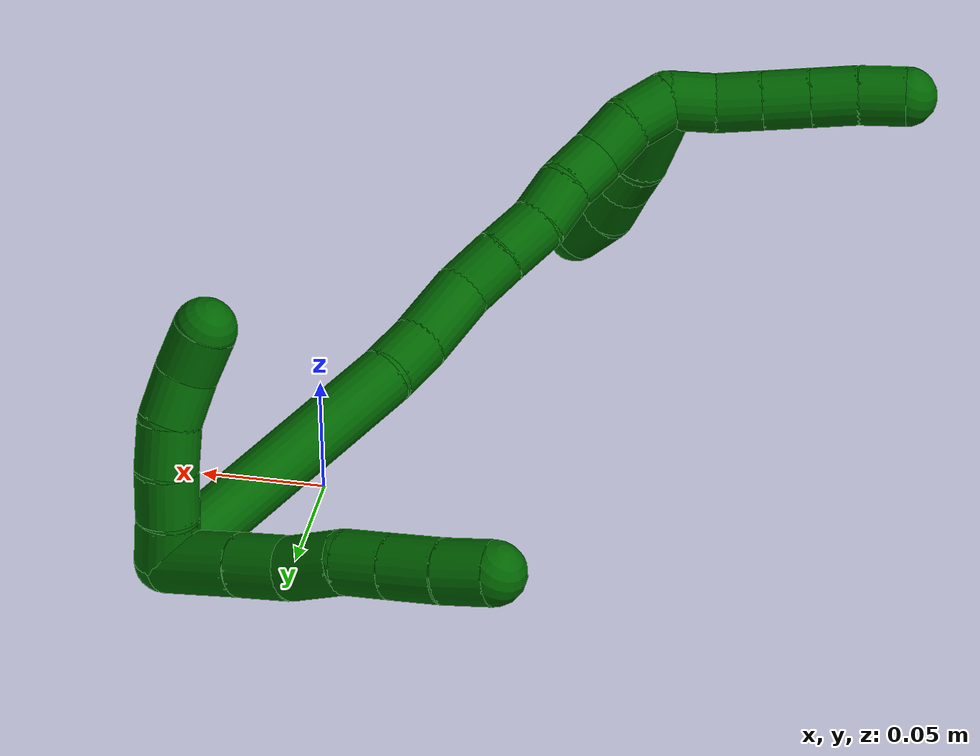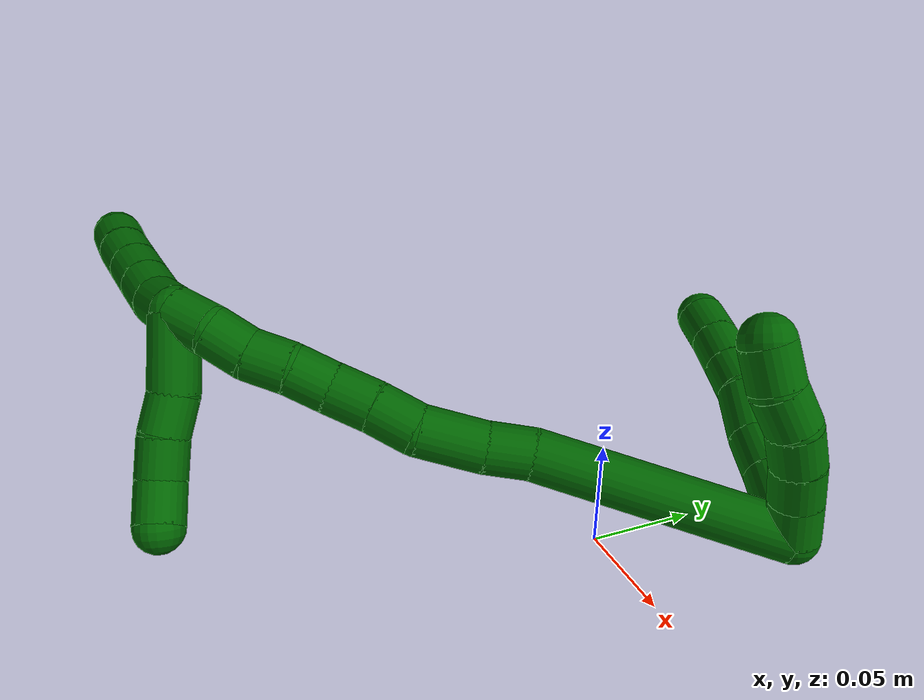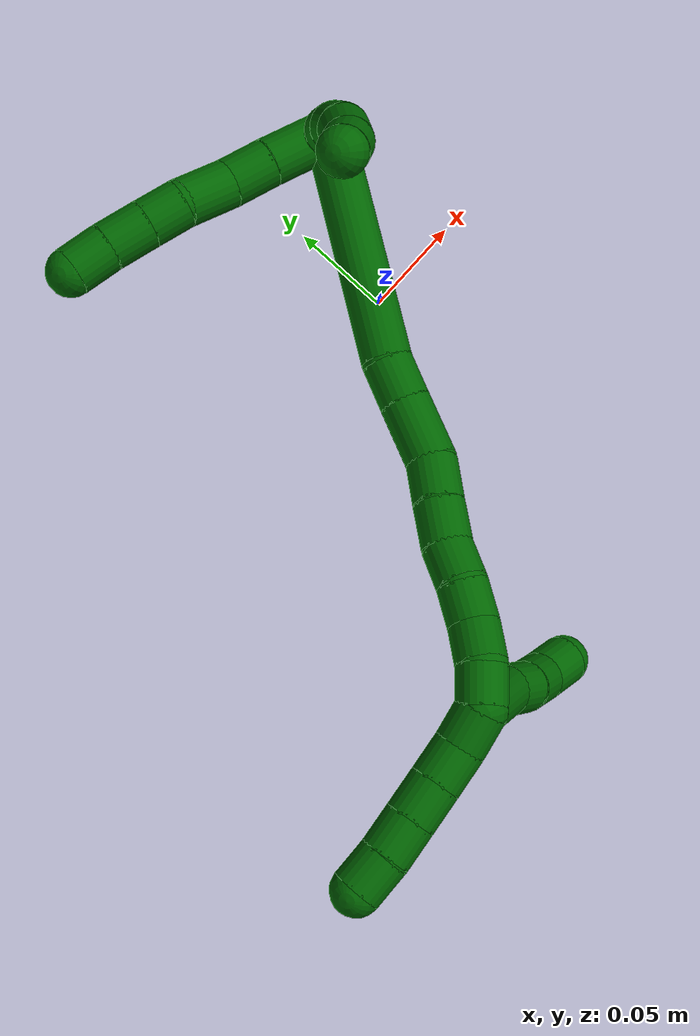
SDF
<sdf version="1.7">
 <world name="default">
  <model name="6">
   <static>0</static>
   <link name="6">
    <collision name="collision-cylinder-e_1_2_8">
     <pose>-0.009278 0.009504 0.012352 -0.65582 -0.536987 0.186655</pose>
     <geometry><cylinder><radius>0.0125</radius><length>0.036275</length></cylinder></geometry>
     <surface>
      <friction><ode><mu>1.16</mu><mu2>1.16</mu2><slip1>0</slip1><slip2>0</slip2></ode></friction>
      <contact><ode><kp>1e+06</kp><kd>1</kd><max_vel>0</max_vel><min_depth>0.001</min_depth></ode></contact>
     </surface>
    </collision>
    <visual name="visual-cylinder-e_1_2_8">
     <pose>-0.009278 0.009504 0.012352 -0.65582 -0.536987 0.186655</pose>
     <geometry><cylinder><radius>0.0125</radius><length>0.036275</length></cylinder></geometry>
     <material><ambient>0 0.392157 0.003922 1</ambient></material>
    </visual>
    <collision name="collision-cylinder-e_2_8_9">
     <pose>-0.024972 0.025046 0.032338 -0.669204 -0.582666 0.207761</pose>
     <geometry><cylinder><radius>0.0125</radius><length>0.023317</length></cylinder></geometry>
     <surface>
      <friction><ode><mu>1.16</mu><mu2>1.16</mu2><slip1>0</slip1><slip2>0</slip2></ode></friction>
      <contact><ode><kp>1e+06</kp><kd>1</kd><max_vel>0</max_vel><min_depth>0.001</min_depth></ode></contact>
     </surface>
    </collision>
    <visual name="visual-cylinder-e_2_8_9">
     <pose>-0.024972 0.025046 0.032338 -0.669204 -0.582666 0.207761</pose>
     <geometry><cylinder><radius>0.0125</radius><length>0.023317</length></cylinder></geometry>
     <material><ambient>0 0.392157 0.003922 1</ambient></material>
    </visual>
    <collision name="collision-cylinder-e_3_9_10">
     <pose>-0.037039 0.03719 0.050704 -0.517262 -0.429337 0.115234</pose>
     <geometry><cylinder><radius>0.0125</radius><length>0.027156</length></cylinder></geometry>
     <surface>
      <friction><ode><mu>1.16</mu><mu2>1.16</mu2><slip1>0</slip1><slip2>0</slip2></ode></friction>
      <contact><ode><kp>1e+06</kp><kd>1</kd><max_vel>0</max_vel><min_depth>0.001</min_depth></ode></contact>
     </surface>
    </collision>
    <visual name="visual-cylinder-e_3_9_10">
     <pose>-0.037039 0.03719 0.050704 -0.517262 -0.429337 0.115234</pose>
     <geometry><cylinder><radius>0.0125</radius><length>0.027156</length></cylinder></geometry>
     <material><ambient>0 0.392157 0.003922 1</ambient></material>
    </visual>
    <collision name="collision-cylinder-e_4_10_11">
     <pose>-0.048722 0.048541 0.067719 -0.695603 -0.63502 0.237163</pose>
     <geometry><cylinder><radius>0.0125</radius><length>0.020336</length></cylinder></geometry>
     <surface>
      <friction><ode><mu>1.16</mu><mu2>1.16</mu2><slip1>0</slip1><slip2>0</slip2></ode></friction>
      <contact><ode><kp>1e+06</kp><kd>1</kd><max_vel>0</max_vel><min_depth>0.001</min_depth></ode></contact>
     </surface>
    </collision>
    <visual name="visual-cylinder-e_4_10_11">
     <pose>-0.048722 0.048541 0.067719 -0.695603 -0.63502 0.237163</pose>
     <geometry><cylinder><radius>0.0125</radius><length>0.020336</length></cylinder></geometry>
     <material><ambient>0 0.392157 0.003922 1</ambient></material>
    </visual>
    <collision name="collision-cylinder-e_5_11_12">
     <pose>-0.061409 0.059415 0.08085 -0.687914 -0.644044 0.237885</pose>
     <geometry><cylinder><radius>0.0125</radius><length>0.022167</length></cylinder></geometry>
     <surface>
      <friction><ode><mu>1.16</mu><mu2>1.16</mu2><slip1>0</slip1><slip2>0</slip2></ode></friction>
      <contact><ode><kp>1e+06</kp><kd>1</kd><max_vel>0</max_vel><min_depth>0.001</min_depth></ode></contact>
     </surface>
    </collision>
    <visual name="visual-cylinder-e_5_11_12">
     <pose>-0.061409 0.059415 0.08085 -0.687914 -0.644044 0.237885</pose>
     <geometry><cylinder><radius>0.0125</radius><length>0.022167</length></cylinder></geometry>
     <material><ambient>0 0.392157 0.003922 1</ambient></material>
    </visual>
    <collision name="collision-cylinder-e_6_12_6">
     <pose>-0.074695 0.069719 0.094162 -0.626278 -0.693396 0.232908</pose>
     <geometry><cylinder><radius>0.0125</radius><length>0.020749</length></cylinder></geometry>
     <surface>
      <friction><ode><mu>1.16</mu><mu2>1.16</mu2><slip1>0</slip1><slip2>0</slip2></ode></friction>
      <contact><ode><kp>1e+06</kp><kd>1</kd><max_vel>0</max_vel><min_depth>0.001</min_depth></ode></contact>
     </surface>
    </collision>
    <visual name="visual-cylinder-e_6_12_6">
     <pose>-0.074695 0.069719 0.094162 -0.626278 -0.693396 0.232908</pose>
     <geometry><cylinder><radius>0.0125</radius><length>0.020749</length></cylinder></geometry>
     <material><ambient>0 0.392157 0.003922 1</ambient></material>
    </visual>
    <collision name="collision-cylinder-e_1_2_13">
     <pose>0.00247 -0.003127 0.009172 0.328616 0.249571 0.04159</pose>
     <geometry><cylinder><radius>0.0125</radius><length>0.02</length></cylinder></geometry>
     <surface>
      <friction><ode><mu>1.16</mu><mu2>1.16</mu2><slip1>0</slip1><slip2>0</slip2></ode></friction>
      <contact><ode><kp>1e+06</kp><kd>1</kd><max_vel>0</max_vel><min_depth>0.001</min_depth></ode></contact>
     </surface>
    </collision>
    <visual name="visual-cylinder-e_1_2_13">
     <pose>0.00247 -0.003127 0.009172 0.328616 0.249571 0.04159</pose>
     <geometry><cylinder><radius>0.0125</radius><length>0.02</length></cylinder></geometry>
     <material><ambient>0 0.392157 0.003922 1</ambient></material>
    </visual>
    <collision name="collision-cylinder-e_2_13_14">
     <pose>0.007614 -0.010572 0.026958 0.464604 0.270752 0.064424</pose>
     <geometry><cylinder><radius>0.0125</radius><length>0.02</length></cylinder></geometry>
     <surface>
      <friction><ode><mu>1.16</mu><mu2>1.16</mu2><slip1>0</slip1><slip2>0</slip2></ode></friction>
      <contact><ode><kp>1e+06</kp><kd>1</kd><max_vel>0</max_vel><min_depth>0.001</min_depth></ode></contact>
     </surface>
    </collision>
    <visual name="visual-cylinder-e_2_13_14">
     <pose>0.007614 -0.010572 0.026958 0.464604 0.270752 0.064424</pose>
     <geometry><cylinder><radius>0.0125</radius><length>0.02</length></cylinder></geometry>
     <material><ambient>0 0.392157 0.003922 1</ambient></material>
    </visual>
    <collision name="collision-cylinder-e_3_14_15">
     <pose>0.011861 -0.019949 0.044053 0.537866 0.157825 0.043582</pose>
     <geometry><cylinder><radius>0.0125</radius><length>0.02</length></cylinder></geometry>
     <surface>
      <friction><ode><mu>1.16</mu><mu2>1.16</mu2><slip1>0</slip1><slip2>0</slip2></ode></friction>
      <contact><ode><kp>1e+06</kp><kd>1</kd><max_vel>0</max_vel><min_depth>0.001</min_depth></ode></contact>
     </surface>
    </collision>
    <visual name="visual-cylinder-e_3_14_15">
     <pose>0.011861 -0.019949 0.044053 0.537866 0.157825 0.043582</pose>
     <geometry><cylinder><radius>0.0125</radius><length>0.02</length></cylinder></geometry>
     <material><ambient>0 0.392157 0.003922 1</ambient></material>
    </visual>
    <collision name="collision-cylinder-e_4_15_16">
     <pose>0.01232 -0.02998 0.061139 0.523955 -0.111441 -0.029911</pose>
     <geometry><cylinder><radius>0.0125</radius><length>0.02</length></cylinder></geometry>
     <surface>
      <friction><ode><mu>1.16</mu><mu2>1.16</mu2><slip1>0</slip1><slip2>0</slip2></ode></friction>
      <contact><ode><kp>1e+06</kp><kd>1</kd><max_vel>0</max_vel><min_depth>0.001</min_depth></ode></contact>
     </surface>
    </collision>
    <visual name="visual-cylinder-e_4_15_16">
     <pose>0.01232 -0.02998 0.061139 0.523955 -0.111441 -0.029911</pose>
     <geometry><cylinder><radius>0.0125</radius><length>0.02</length></cylinder></geometry>
     <material><ambient>0 0.392157 0.003922 1</ambient></material>
    </visual>
    <collision name="collision-cylinder-e_5_16_5">
     <pose>0.010565 -0.037528 0.079385 0.260993 -0.06436 -0.00845</pose>
     <geometry><cylinder><radius>0.0125</radius><length>0.02</length></cylinder></geometry>
     <surface>
      <friction><ode><mu>1.16</mu><mu2>1.16</mu2><slip1>0</slip1><slip2>0</slip2></ode></friction>
      <contact><ode><kp>1e+06</kp><kd>1</kd><max_vel>0</max_vel><min_depth>0.001</min_depth></ode></contact>
     </surface>
    </collision>
    <visual name="visual-cylinder-e_5_16_5">
     <pose>0.010565 -0.037528 0.079385 0.260993 -0.06436 -0.00845</pose>
     <geometry><cylinder><radius>0.0125</radius><length>0.02</length></cylinder></geometry>
     <material><ambient>0 0.392157 0.003922 1</ambient></material>
    </visual>
    <collision name="collision-cylinder-e_1_2_17">
     <pose>-0.044639 -0.035479 0.021128 1.03368 -0.824311 -0.487115</pose>
     <geometry><cylinder><radius>0.0125</radius><length>0.12162</length></cylinder></geometry>
     <surface>
      <friction><ode><mu>1.16</mu><mu2>1.16</mu2><slip1>0</slip1><slip2>0</slip2></ode></friction>
      <contact><ode><kp>1e+06</kp><kd>1</kd><max_vel>0</max_vel><min_depth>0.001</min_depth></ode></contact>
     </surface>
    </collision>
    <visual name="visual-cylinder-e_1_2_17">
     <pose>-0.044639 -0.035479 0.021128 1.03368 -0.824311 -0.487115</pose>
     <geometry><cylinder><radius>0.0125</radius><length>0.12162</length></cylinder></geometry>
     <material><ambient>0 0.392157 0.003922 1</ambient></material>
    </visual>
    <collision name="collision-cylinder-e_2_17_18">
     <pose>-0.096983 -0.078636 0.044459 1.29153 -0.767354 -0.590594</pose>
     <geometry><cylinder><radius>0.0125</radius><length>0.022195</length></cylinder></geometry>
     <surface>
      <friction><ode><mu>1.16</mu><mu2>1.16</mu2><slip1>0</slip1><slip2>0</slip2></ode></friction>
      <contact><ode><kp>1e+06</kp><kd>1</kd><max_vel>0</max_vel><min_depth>0.001</min_depth></ode></contact>
     </surface>
    </collision>
    <visual name="visual-cylinder-e_2_17_18">
     <pose>-0.096983 -0.078636 0.044459 1.29153 -0.767354 -0.590594</pose>
     <geometry><cylinder><radius>0.0125</radius><length>0.022195</length></cylinder></geometry>
     <material><ambient>0 0.392157 0.003922 1</ambient></material>
    </visual>
    <collision name="collision-cylinder-e_3_18_19">
     <pose>-0.114746 -0.097685 0.051638 1.15816 -0.680995 -0.455289</pose>
     <geometry><cylinder><radius>0.0125</radius><length>0.031953</length></cylinder></geometry>
     <surface>
      <friction><ode><mu>1.16</mu><mu2>1.16</mu2><slip1>0</slip1><slip2>0</slip2></ode></friction>
      <contact><ode><kp>1e+06</kp><kd>1</kd><max_vel>0</max_vel><min_depth>0.001</min_depth></ode></contact>
     </surface>
    </collision>
    <visual name="visual-cylinder-e_3_18_19">
     <pose>-0.114746 -0.097685 0.051638 1.15816 -0.680995 -0.455289</pose>
     <geometry><cylinder><radius>0.0125</radius><length>0.031953</length></cylinder></geometry>
     <material><ambient>0 0.392157 0.003922 1</ambient></material>
    </visual>
    <collision name="collision-cylinder-e_4_19_20">
     <pose>-0.132193 -0.114859 0.062216 0.803126 -0.741713 -0.327286</pose>
     <geometry><cylinder><radius>0.0125</radius><length>0.021874</length></cylinder></geometry>
     <surface>
      <friction><ode><mu>1.16</mu><mu2>1.16</mu2><slip1>0</slip1><slip2>0</slip2></ode></friction>
      <contact><ode><kp>1e+06</kp><kd>1</kd><max_vel>0</max_vel><min_depth>0.001</min_depth></ode></contact>
     </surface>
    </collision>
    <visual name="visual-cylinder-e_4_19_20">
     <pose>-0.132193 -0.114859 0.062216 0.803126 -0.741713 -0.327286</pose>
     <geometry><cylinder><radius>0.0125</radius><length>0.021874</length></cylinder></geometry>
     <material><ambient>0 0.392157 0.003922 1</ambient></material>
    </visual>
    <collision name="collision-cylinder-e_5_20_21">
     <pose>-0.147368 -0.126669 0.072721 0.88619 -0.787363 -0.389247</pose>
     <geometry><cylinder><radius>0.0125</radius><length>0.021981</length></cylinder></geometry>
     <surface>
      <friction><ode><mu>1.16</mu><mu2>1.16</mu2><slip1>0</slip1><slip2>0</slip2></ode></friction>
      <contact><ode><kp>1e+06</kp><kd>1</kd><max_vel>0</max_vel><min_depth>0.001</min_depth></ode></contact>
     </surface>
    </collision>
    <visual name="visual-cylinder-e_5_20_21">
     <pose>-0.147368 -0.126669 0.072721 0.88619 -0.787363 -0.389247</pose>
     <geometry><cylinder><radius>0.0125</radius><length>0.021981</length></cylinder></geometry>
     <material><ambient>0 0.392157 0.003922 1</ambient></material>
    </visual>
    <collision name="collision-cylinder-e_6_21_22">
     <pose>-0.160644 -0.139557 0.082519 0.952575 -0.576555 -0.303614</pose>
     <geometry><cylinder><radius>0.0125</radius><length>0.02014</length></cylinder></geometry>
     <surface>
      <friction><ode><mu>1.16</mu><mu2>1.16</mu2><slip1>0</slip1><slip2>0</slip2></ode></friction>
      <contact><ode><kp>1e+06</kp><kd>1</kd><max_vel>0</max_vel><min_depth>0.001</min_depth></ode></contact>
     </surface>
    </collision>
    <visual name="visual-cylinder-e_6_21_22">
     <pose>-0.160644 -0.139557 0.082519 0.952575 -0.576555 -0.303614</pose>
     <geometry><cylinder><radius>0.0125</radius><length>0.02014</length></cylinder></geometry>
     <material><ambient>0 0.392157 0.003922 1</ambient></material>
    </visual>
    <collision name="collision-cylinder-e_7_22_23">
     <pose>-0.173128 -0.15256 0.091165 1.02089 -0.772167 -0.447588</pose>
     <geometry><cylinder><radius>0.0125</radius><length>0.020051</length></cylinder></geometry>
     <surface>
      <friction><ode><mu>1.16</mu><mu2>1.16</mu2><slip1>0</slip1><slip2>0</slip2></ode></friction>
      <contact><ode><kp>1e+06</kp><kd>1</kd><max_vel>0</max_vel><min_depth>0.001</min_depth></ode></contact>
     </surface>
    </collision>
    <visual name="visual-cylinder-e_7_22_23">
     <pose>-0.173128 -0.15256 0.091165 1.02089 -0.772167 -0.447588</pose>
     <geometry><cylinder><radius>0.0125</radius><length>0.020051</length></cylinder></geometry>
     <material><ambient>0 0.392157 0.003922 1</ambient></material>
    </visual>
    <collision name="collision-cylinder-e_8_23_24">
     <pose>-0.186243 -0.164184 0.100694 0.761046 -0.654528 -0.269938</pose>
     <geometry><cylinder><radius>0.0125</radius><length>0.020105</length></cylinder></geometry>
     <surface>
      <friction><ode><mu>1.16</mu><mu2>1.16</mu2><slip1>0</slip1><slip2>0</slip2></ode></friction>
      <contact><ode><kp>1e+06</kp><kd>1</kd><max_vel>0</max_vel><min_depth>0.001</min_depth></ode></contact>
     </surface>
    </collision>
    <visual name="visual-cylinder-e_8_23_24">
     <pose>-0.186243 -0.164184 0.100694 0.761046 -0.654528 -0.269938</pose>
     <geometry><cylinder><radius>0.0125</radius><length>0.020105</length></cylinder></geometry>
     <material><ambient>0 0.392157 0.003922 1</ambient></material>
    </visual>
    <collision name="collision-cylinder-e_9_24_1">
     <pose>-0.200404 -0.173446 0.111158 0.676028 -0.928855 -0.348615</pose>
     <geometry><cylinder><radius>0.0125</radius><length>0.020081</length></cylinder></geometry>
     <surface>
      <friction><ode><mu>1.16</mu><mu2>1.16</mu2><slip1>0</slip1><slip2>0</slip2></ode></friction>
      <contact><ode><kp>1e+06</kp><kd>1</kd><max_vel>0</max_vel><min_depth>0.001</min_depth></ode></contact>
     </surface>
    </collision>
    <visual name="visual-cylinder-e_9_24_1">
     <pose>-0.200404 -0.173446 0.111158 0.676028 -0.928855 -0.348615</pose>
     <geometry><cylinder><radius>0.0125</radius><length>0.020081</length></cylinder></geometry>
     <material><ambient>0 0.392157 0.003922 1</ambient></material>
    </visual>
    <collision name="collision-cylinder-e_1_1_25">
     <pose>-0.210498 -0.177648 0.097156 3.11799 -0.109302 -2.71667</pose>
     <geometry><cylinder><radius>0.0125</radius><length>0.037618</length></cylinder></geometry>
     <surface>
      <friction><ode><mu>1.16</mu><mu2>1.16</mu2><slip1>0</slip1><slip2>0</slip2></ode></friction>
      <contact><ode><kp>1e+06</kp><kd>1</kd><max_vel>0</max_vel><min_depth>0.001</min_depth></ode></contact>
     </surface>
    </collision>
    <visual name="visual-cylinder-e_1_1_25">
     <pose>-0.210498 -0.177648 0.097156 3.11799 -0.109302 -2.71667</pose>
     <geometry><cylinder><radius>0.0125</radius><length>0.037618</length></cylinder></geometry>
     <material><ambient>0 0.392157 0.003922 1</ambient></material>
    </visual>
    <collision name="collision-cylinder-e_2_25_26">
     <pose>-0.213951 -0.180683 0.068859 2.87791 -0.139902 -0.972151</pose>
     <geometry><cylinder><radius>0.0125</radius><length>0.020095</length></cylinder></geometry>
     <surface>
      <friction><ode><mu>1.16</mu><mu2>1.16</mu2><slip1>0</slip1><slip2>0</slip2></ode></friction>
      <contact><ode><kp>1e+06</kp><kd>1</kd><max_vel>0</max_vel><min_depth>0.001</min_depth></ode></contact>
     </surface>
    </collision>
    <visual name="visual-cylinder-e_2_25_26">
     <pose>-0.213951 -0.180683 0.068859 2.87791 -0.139902 -0.972151</pose>
     <geometry><cylinder><radius>0.0125</radius><length>0.020095</length></cylinder></geometry>
     <material><ambient>0 0.392157 0.003922 1</ambient></material>
    </visual>
    <collision name="collision-cylinder-e_3_26_27">
     <pose>-0.216154 -0.184332 0.048919 3.0398 -0.077093 -1.29599</pose>
     <geometry><cylinder><radius>0.0125</radius><length>0.020838</length></cylinder></geometry>
     <surface>
      <friction><ode><mu>1.16</mu><mu2>1.16</mu2><slip1>0</slip1><slip2>0</slip2></ode></friction>
      <contact><ode><kp>1e+06</kp><kd>1</kd><max_vel>0</max_vel><min_depth>0.001</min_depth></ode></contact>
     </surface>
    </collision>
    <visual name="visual-cylinder-e_3_26_27">
     <pose>-0.216154 -0.184332 0.048919 3.0398 -0.077093 -1.29599</pose>
     <geometry><cylinder><radius>0.0125</radius><length>0.020838</length></cylinder></geometry>
     <material><ambient>0 0.392157 0.003922 1</ambient></material>
    </visual>
    <collision name="collision-cylinder-e_4_27_4">
     <pose>-0.214646 -0.188143 0.028481 2.87535 0.217179 1.36655</pose>
     <geometry><cylinder><radius>0.0125</radius><length>0.021448</length></cylinder></geometry>
     <surface>
      <friction><ode><mu>1.16</mu><mu2>1.16</mu2><slip1>0</slip1><slip2>0</slip2></ode></friction>
      <contact><ode><kp>1e+06</kp><kd>1</kd><max_vel>0</max_vel><min_depth>0.001</min_depth></ode></contact>
     </surface>
    </collision>
    <visual name="visual-cylinder-e_4_27_4">
     <pose>-0.214646 -0.188143 0.028481 2.87535 0.217179 1.36655</pose>
     <geometry><cylinder><radius>0.0125</radius><length>0.021448</length></cylinder></geometry>
     <material><ambient>0 0.392157 0.003922 1</ambient></material>
    </visual>
    <collision name="collision-cylinder-e_1_1_28">
     <pose>-0.217828 -0.175361 0.118775 -0.562631 -1.21744 0.397528</pose>
     <geometry><cylinder><radius>0.0125</radius><length>0.02</length></cylinder></geometry>
     <surface>
      <friction><ode><mu>1.16</mu><mu2>1.16</mu2><slip1>0</slip1><slip2>0</slip2></ode></friction>
      <contact><ode><kp>1e+06</kp><kd>1</kd><max_vel>0</max_vel><min_depth>0.001</min_depth></ode></contact>
     </surface>
    </collision>
    <visual name="visual-cylinder-e_1_1_28">
     <pose>-0.217828 -0.175361 0.118775 -0.562631 -1.21744 0.397528</pose>
     <geometry><cylinder><radius>0.0125</radius><length>0.02</length></cylinder></geometry>
     <material><ambient>0 0.392157 0.003922 1</ambient></material>
    </visual>
    <collision name="collision-cylinder-e_2_28_29">
     <pose>-0.235692 -0.171339 0.126532 -0.423319 -1.01242 0.237136</pose>
     <geometry><cylinder><radius>0.0125</radius><length>0.02</length></cylinder></geometry>
     <surface>
      <friction><ode><mu>1.16</mu><mu2>1.16</mu2><slip1>0</slip1><slip2>0</slip2></ode></friction>
      <contact><ode><kp>1e+06</kp><kd>1</kd><max_vel>0</max_vel><min_depth>0.001</min_depth></ode></contact>
     </surface>
    </collision>
    <visual name="visual-cylinder-e_2_28_29">
     <pose>-0.235692 -0.171339 0.126532 -0.423319 -1.01242 0.237136</pose>
     <geometry><cylinder><radius>0.0125</radius><length>0.02</length></cylinder></geometry>
     <material><ambient>0 0.392157 0.003922 1</ambient></material>
    </visual>
    <collision name="collision-cylinder-e_3_29_30">
     <pose>-0.25263 -0.166939 0.136213 -0.429783 -1.00795 0.23958</pose>
     <geometry><cylinder><radius>0.0125</radius><length>0.02</length></cylinder></geometry>
     <surface>
      <friction><ode><mu>1.16</mu><mu2>1.16</mu2><slip1>0</slip1><slip2>0</slip2></ode></friction>
      <contact><ode><kp>1e+06</kp><kd>1</kd><max_vel>0</max_vel><min_depth>0.001</min_depth></ode></contact>
     </surface>
    </collision>
    <visual name="visual-cylinder-e_3_29_30">
     <pose>-0.25263 -0.166939 0.136213 -0.429783 -1.00795 0.23958</pose>
     <geometry><cylinder><radius>0.0125</radius><length>0.02</length></cylinder></geometry>
     <material><ambient>0 0.392157 0.003922 1</ambient></material>
    </visual>
    <collision name="collision-cylinder-e_4_30_31">
     <pose>-0.269525 -0.162481 0.145943 -0.429524 -1.00429 0.238406</pose>
     <geometry><cylinder><radius>0.0125</radius><length>0.02</length></cylinder></geometry>
     <surface>
      <friction><ode><mu>1.16</mu><mu2>1.16</mu2><slip1>0</slip1><slip2>0</slip2></ode></friction>
      <contact><ode><kp>1e+06</kp><kd>1</kd><max_vel>0</max_vel><min_depth>0.001</min_depth></ode></contact>
     </surface>
    </collision>
    <visual name="visual-cylinder-e_4_30_31">
     <pose>-0.269525 -0.162481 0.145943 -0.429524 -1.00429 0.238406</pose>
     <geometry><cylinder><radius>0.0125</radius><length>0.02</length></cylinder></geometry>
     <material><ambient>0 0.392157 0.003922 1</ambient></material>
    </visual>
    <collision name="collision-cylinder-e_5_31_3">
     <pose>-0.286284 -0.1571 0.15539 -0.603248 -0.982903 0.330025</pose>
     <geometry><cylinder><radius>0.0125</radius><length>0.02</length></cylinder></geometry>
     <surface>
      <friction><ode><mu>1.16</mu><mu2>1.16</mu2><slip1>0</slip1><slip2>0</slip2></ode></friction>
      <contact><ode><kp>1e+06</kp><kd>1</kd><max_vel>0</max_vel><min_depth>0.001</min_depth></ode></contact>
     </surface>
    </collision>
    <visual name="visual-cylinder-e_5_31_3">
     <pose>-0.286284 -0.1571 0.15539 -0.603248 -0.982903 0.330025</pose>
     <geometry><cylinder><radius>0.0125</radius><length>0.02</length></cylinder></geometry>
     <material><ambient>0 0.392157 0.003922 1</ambient></material>
    </visual>
    <collision name="collision-sphere-3">
     <pose>-0.294605 -0.153953 0.159957 0 -0 0</pose>
     <geometry><sphere><radius>0.0125</radius></sphere></geometry>
     <surface>
      <friction><ode><mu>1.16</mu><mu2>1.16</mu2><slip1>0</slip1><slip2>0</slip2></ode></friction>
      <contact><ode><kp>1e+06</kp><kd>1</kd><max_vel>0</max_vel><min_depth>0.001</min_depth></ode></contact>
     </surface>
    </collision>
    <visual name="visual-sphere-3">
     <pose>-0.294605 -0.153953 0.159957 0 -0 0</pose>
     <geometry><sphere><radius>0.0125</radius></sphere></geometry>
     <material><ambient>0 0.392157 0.003922 1</ambient></material>
    </visual>
    <collision name="collision-sphere-31">
     <pose>-0.277963 -0.160246 0.150823 0 -0 0</pose>
     <geometry><sphere><radius>0.0125</radius></sphere></geometry>
     <surface>
      <friction><ode><mu>1.16</mu><mu2>1.16</mu2><slip1>0</slip1><slip2>0</slip2></ode></friction>
      <contact><ode><kp>1e+06</kp><kd>1</kd><max_vel>0</max_vel><min_depth>0.001</min_depth></ode></contact>
     </surface>
    </collision>
    <visual name="visual-sphere-31">
     <pose>-0.277963 -0.160246 0.150823 0 -0 0</pose>
     <geometry><sphere><radius>0.0125</radius></sphere></geometry>
     <material><ambient>0 0.392157 0.003922 1</ambient></material>
    </visual>
    <collision name="collision-sphere-30">
     <pose>-0.261087 -0.164716 0.141064 0 -0 0</pose>
     <geometry><sphere><radius>0.0125</radius></sphere></geometry>
     <surface>
      <friction><ode><mu>1.16</mu><mu2>1.16</mu2><slip1>0</slip1><slip2>0</slip2></ode></friction>
      <contact><ode><kp>1e+06</kp><kd>1</kd><max_vel>0</max_vel><min_depth>0.001</min_depth></ode></contact>
     </surface>
    </collision>
    <visual name="visual-sphere-30">
     <pose>-0.261087 -0.164716 0.141064 0 -0 0</pose>
     <geometry><sphere><radius>0.0125</radius></sphere></geometry>
     <material><ambient>0 0.392157 0.003922 1</ambient></material>
    </visual>
    <collision name="collision-sphere-29">
     <pose>-0.244173 -0.169163 0.131363 0 -0 0</pose>
     <geometry><sphere><radius>0.0125</radius></sphere></geometry>
     <surface>
      <friction><ode><mu>1.16</mu><mu2>1.16</mu2><slip1>0</slip1><slip2>0</slip2></ode></friction>
      <contact><ode><kp>1e+06</kp><kd>1</kd><max_vel>0</max_vel><min_depth>0.001</min_depth></ode></contact>
     </surface>
    </collision>
    <visual name="visual-sphere-29">
     <pose>-0.244173 -0.169163 0.131363 0 -0 0</pose>
     <geometry><sphere><radius>0.0125</radius></sphere></geometry>
     <material><ambient>0 0.392157 0.003922 1</ambient></material>
    </visual>
    <collision name="collision-sphere-28">
     <pose>-0.22721 -0.173516 0.121702 0 -0 0</pose>
     <geometry><sphere><radius>0.0125</radius></sphere></geometry>
     <surface>
      <friction><ode><mu>1.16</mu><mu2>1.16</mu2><slip1>0</slip1><slip2>0</slip2></ode></friction>
      <contact><ode><kp>1e+06</kp><kd>1</kd><max_vel>0</max_vel><min_depth>0.001</min_depth></ode></contact>
     </surface>
    </collision>
    <visual name="visual-sphere-28">
     <pose>-0.22721 -0.173516 0.121702 0 -0 0</pose>
     <geometry><sphere><radius>0.0125</radius></sphere></geometry>
     <material><ambient>0 0.392157 0.003922 1</ambient></material>
    </visual>
    <collision name="collision-sphere-4">
     <pose>-0.212335 -0.190898 0.018378 0 -0 0</pose>
     <geometry><sphere><radius>0.0125</radius></sphere></geometry>
     <surface>
      <friction><ode><mu>1.16</mu><mu2>1.16</mu2><slip1>0</slip1><slip2>0</slip2></ode></friction>
      <contact><ode><kp>1e+06</kp><kd>1</kd><max_vel>0</max_vel><min_depth>0.001</min_depth></ode></contact>
     </surface>
    </collision>
    <visual name="visual-sphere-4">
     <pose>-0.212335 -0.190898 0.018378 0 -0 0</pose>
     <geometry><sphere><radius>0.0125</radius></sphere></geometry>
     <material><ambient>0 0.392157 0.003922 1</ambient></material>
    </visual>
    <collision name="collision-sphere-27">
     <pose>-0.216957 -0.185387 0.038584 0 -0 0</pose>
     <geometry><sphere><radius>0.0125</radius></sphere></geometry>
     <surface>
      <friction><ode><mu>1.16</mu><mu2>1.16</mu2><slip1>0</slip1><slip2>0</slip2></ode></friction>
      <contact><ode><kp>1e+06</kp><kd>1</kd><max_vel>0</max_vel><min_depth>0.001</min_depth></ode></contact>
     </surface>
    </collision>
    <visual name="visual-sphere-27">
     <pose>-0.216957 -0.185387 0.038584 0 -0 0</pose>
     <geometry><sphere><radius>0.0125</radius></sphere></geometry>
     <material><ambient>0 0.392157 0.003922 1</ambient></material>
    </visual>
    <collision name="collision-sphere-26">
     <pose>-0.215352 -0.183276 0.059253 0 -0 0</pose>
     <geometry><sphere><radius>0.0125</radius></sphere></geometry>
     <surface>
      <friction><ode><mu>1.16</mu><mu2>1.16</mu2><slip1>0</slip1><slip2>0</slip2></ode></friction>
      <contact><ode><kp>1e+06</kp><kd>1</kd><max_vel>0</max_vel><min_depth>0.001</min_depth></ode></contact>
     </surface>
    </collision>
    <visual name="visual-sphere-26">
     <pose>-0.215352 -0.183276 0.059253 0 -0 0</pose>
     <geometry><sphere><radius>0.0125</radius></sphere></geometry>
     <material><ambient>0 0.392157 0.003922 1</ambient></material>
    </visual>
    <collision name="collision-sphere-25">
     <pose>-0.21255 -0.17809 0.078464 0 -0 0</pose>
     <geometry><sphere><radius>0.0125</radius></sphere></geometry>
     <surface>
      <friction><ode><mu>1.16</mu><mu2>1.16</mu2><slip1>0</slip1><slip2>0</slip2></ode></friction>
      <contact><ode><kp>1e+06</kp><kd>1</kd><max_vel>0</max_vel><min_depth>0.001</min_depth></ode></contact>
     </surface>
    </collision>
    <visual name="visual-sphere-25">
     <pose>-0.21255 -0.17809 0.078464 0 -0 0</pose>
     <geometry><sphere><radius>0.0125</radius></sphere></geometry>
     <material><ambient>0 0.392157 0.003922 1</ambient></material>
    </visual>
    <collision name="collision-sphere-1">
     <pose>-0.208446 -0.177207 0.115848 0 -0 0</pose>
     <geometry><sphere><radius>0.0125</radius></sphere></geometry>
     <surface>
      <friction><ode><mu>1.16</mu><mu2>1.16</mu2><slip1>0</slip1><slip2>0</slip2></ode></friction>
      <contact><ode><kp>1e+06</kp><kd>1</kd><max_vel>0</max_vel><min_depth>0.001</min_depth></ode></contact>
     </surface>
    </collision>
    <visual name="visual-sphere-1">
     <pose>-0.208446 -0.177207 0.115848 0 -0 0</pose>
     <geometry><sphere><radius>0.0125</radius></sphere></geometry>
     <material><ambient>0 0.392157 0.003922 1</ambient></material>
    </visual>
    <collision name="collision-sphere-24">
     <pose>-0.192363 -0.169684 0.106469 0 -0 0</pose>
     <geometry><sphere><radius>0.0125</radius></sphere></geometry>
     <surface>
      <friction><ode><mu>1.16</mu><mu2>1.16</mu2><slip1>0</slip1><slip2>0</slip2></ode></friction>
      <contact><ode><kp>1e+06</kp><kd>1</kd><max_vel>0</max_vel><min_depth>0.001</min_depth></ode></contact>
     </surface>
    </collision>
    <visual name="visual-sphere-24">
     <pose>-0.192363 -0.169684 0.106469 0 -0 0</pose>
     <geometry><sphere><radius>0.0125</radius></sphere></geometry>
     <material><ambient>0 0.392157 0.003922 1</ambient></material>
    </visual>
    <collision name="collision-sphere-23">
     <pose>-0.180123 -0.158684 0.094919 0 -0 0</pose>
     <geometry><sphere><radius>0.0125</radius></sphere></geometry>
     <surface>
      <friction><ode><mu>1.16</mu><mu2>1.16</mu2><slip1>0</slip1><slip2>0</slip2></ode></friction>
      <contact><ode><kp>1e+06</kp><kd>1</kd><max_vel>0</max_vel><min_depth>0.001</min_depth></ode></contact>
     </surface>
    </collision>
    <visual name="visual-sphere-23">
     <pose>-0.180123 -0.158684 0.094919 0 -0 0</pose>
     <geometry><sphere><radius>0.0125</radius></sphere></geometry>
     <material><ambient>0 0.392157 0.003922 1</ambient></material>
    </visual>
    <collision name="collision-sphere-22">
     <pose>-0.166133 -0.146437 0.087412 0 -0 0</pose>
     <geometry><sphere><radius>0.0125</radius></sphere></geometry>
     <surface>
      <friction><ode><mu>1.16</mu><mu2>1.16</mu2><slip1>0</slip1><slip2>0</slip2></ode></friction>
      <contact><ode><kp>1e+06</kp><kd>1</kd><max_vel>0</max_vel><min_depth>0.001</min_depth></ode></contact>
     </surface>
    </collision>
    <visual name="visual-sphere-22">
     <pose>-0.166133 -0.146437 0.087412 0 -0 0</pose>
     <geometry><sphere><radius>0.0125</radius></sphere></geometry>
     <material><ambient>0 0.392157 0.003922 1</ambient></material>
    </visual>
    <collision name="collision-sphere-21">
     <pose>-0.155154 -0.132678 0.077626 0 -0 0</pose>
     <geometry><sphere><radius>0.0125</radius></sphere></geometry>
     <surface>
      <friction><ode><mu>1.16</mu><mu2>1.16</mu2><slip1>0</slip1><slip2>0</slip2></ode></friction>
      <contact><ode><kp>1e+06</kp><kd>1</kd><max_vel>0</max_vel><min_depth>0.001</min_depth></ode></contact>
     </surface>
    </collision>
    <visual name="visual-sphere-21">
     <pose>-0.155154 -0.132678 0.077626 0 -0 0</pose>
     <geometry><sphere><radius>0.0125</radius></sphere></geometry>
     <material><ambient>0 0.392157 0.003922 1</ambient></material>
    </visual>
    <collision name="collision-sphere-12">
     <pose>-0.068064 0.065042 0.087697 0 -0 0</pose>
     <geometry><sphere><radius>0.0125</radius></sphere></geometry>
     <surface>
      <friction><ode><mu>1.16</mu><mu2>1.16</mu2><slip1>0</slip1><slip2>0</slip2></ode></friction>
      <contact><ode><kp>1e+06</kp><kd>1</kd><max_vel>0</max_vel><min_depth>0.001</min_depth></ode></contact>
     </surface>
    </collision>
    <visual name="visual-sphere-12">
     <pose>-0.068064 0.065042 0.087697 0 -0 0</pose>
     <geometry><sphere><radius>0.0125</radius></sphere></geometry>
     <material><ambient>0 0.392157 0.003922 1</ambient></material>
    </visual>
    <collision name="collision-sphere-11">
     <pose>-0.054754 0.053787 0.074003 0 -0 0</pose>
     <geometry><sphere><radius>0.0125</radius></sphere></geometry>
     <surface>
      <friction><ode><mu>1.16</mu><mu2>1.16</mu2><slip1>0</slip1><slip2>0</slip2></ode></friction>
      <contact><ode><kp>1e+06</kp><kd>1</kd><max_vel>0</max_vel><min_depth>0.001</min_depth></ode></contact>
     </surface>
    </collision>
    <visual name="visual-sphere-11">
     <pose>-0.054754 0.053787 0.074003 0 -0 0</pose>
     <geometry><sphere><radius>0.0125</radius></sphere></geometry>
     <material><ambient>0 0.392157 0.003922 1</ambient></material>
    </visual>
    <collision name="collision-sphere-10">
     <pose>-0.042691 0.043295 0.061435 0 -0 0</pose>
     <geometry><sphere><radius>0.0125</radius></sphere></geometry>
     <surface>
      <friction><ode><mu>1.16</mu><mu2>1.16</mu2><slip1>0</slip1><slip2>0</slip2></ode></friction>
      <contact><ode><kp>1e+06</kp><kd>1</kd><max_vel>0</max_vel><min_depth>0.001</min_depth></ode></contact>
     </surface>
    </collision>
    <visual name="visual-sphere-10">
     <pose>-0.042691 0.043295 0.061435 0 -0 0</pose>
     <geometry><sphere><radius>0.0125</radius></sphere></geometry>
     <material><ambient>0 0.392157 0.003922 1</ambient></material>
    </visual>
    <collision name="collision-sphere-9">
     <pose>-0.031387 0.031086 0.039973 0 -0 0</pose>
     <geometry><sphere><radius>0.0125</radius></sphere></geometry>
     <surface>
      <friction><ode><mu>1.16</mu><mu2>1.16</mu2><slip1>0</slip1><slip2>0</slip2></ode></friction>
      <contact><ode><kp>1e+06</kp><kd>1</kd><max_vel>0</max_vel><min_depth>0.001</min_depth></ode></contact>
     </surface>
    </collision>
    <visual name="visual-sphere-9">
     <pose>-0.031387 0.031086 0.039973 0 -0 0</pose>
     <geometry><sphere><radius>0.0125</radius></sphere></geometry>
     <material><ambient>0 0.392157 0.003922 1</ambient></material>
    </visual>
    <collision name="collision-sphere-2">
     <geometry><sphere><radius>0.0125</radius></sphere></geometry>
     <surface>
      <friction><ode><mu>1.16</mu><mu2>1.16</mu2><slip1>0</slip1><slip2>0</slip2></ode></friction>
      <contact><ode><kp>1e+06</kp><kd>1</kd><max_vel>0</max_vel><min_depth>0.001</min_depth></ode></contact>
     </surface>
    </collision>
    <visual name="visual-sphere-2">
     <geometry><sphere><radius>0.0125</radius></sphere></geometry>
     <material><ambient>0 0.392157 0.003922 1</ambient></material>
    </visual>
    <collision name="collision-sphere-19">
     <pose>-0.124804 -0.109056 0.056616 0 -0 0</pose>
     <geometry><sphere><radius>0.0125</radius></sphere></geometry>
     <surface>
      <friction><ode><mu>1.16</mu><mu2>1.16</mu2><slip1>0</slip1><slip2>0</slip2></ode></friction>
      <contact><ode><kp>1e+06</kp><kd>1</kd><max_vel>0</max_vel><min_depth>0.001</min_depth></ode></contact>
     </surface>
    </collision>
    <visual name="visual-sphere-19">
     <pose>-0.124804 -0.109056 0.056616 0 -0 0</pose>
     <geometry><sphere><radius>0.0125</radius></sphere></geometry>
     <material><ambient>0 0.392157 0.003922 1</ambient></material>
    </visual>
    <collision name="collision-sphere-8">
     <pose>-0.018556 0.019007 0.024703 0 -0 0</pose>
     <geometry><sphere><radius>0.0125</radius></sphere></geometry>
     <surface>
      <friction><ode><mu>1.16</mu><mu2>1.16</mu2><slip1>0</slip1><slip2>0</slip2></ode></friction>
      <contact><ode><kp>1e+06</kp><kd>1</kd><max_vel>0</max_vel><min_depth>0.001</min_depth></ode></contact>
     </surface>
    </collision>
    <visual name="visual-sphere-8">
     <pose>-0.018556 0.019007 0.024703 0 -0 0</pose>
     <geometry><sphere><radius>0.0125</radius></sphere></geometry>
     <material><ambient>0 0.392157 0.003922 1</ambient></material>
    </visual>
    <collision name="collision-sphere-6">
     <pose>-0.081326 0.074396 0.100627 0 -0 0</pose>
     <geometry><sphere><radius>0.0125</radius></sphere></geometry>
     <surface>
      <friction><ode><mu>1.16</mu><mu2>1.16</mu2><slip1>0</slip1><slip2>0</slip2></ode></friction>
      <contact><ode><kp>1e+06</kp><kd>1</kd><max_vel>0</max_vel><min_depth>0.001</min_depth></ode></contact>
     </surface>
    </collision>
    <visual name="visual-sphere-6">
     <pose>-0.081326 0.074396 0.100627 0 -0 0</pose>
     <geometry><sphere><radius>0.0125</radius></sphere></geometry>
     <material><ambient>0 0.392157 0.003922 1</ambient></material>
    </visual>
    <collision name="collision-sphere-13">
     <pose>0.00494 -0.006255 0.018343 0 -0 0</pose>
     <geometry><sphere><radius>0.0125</radius></sphere></geometry>
     <surface>
      <friction><ode><mu>1.16</mu><mu2>1.16</mu2><slip1>0</slip1><slip2>0</slip2></ode></friction>
      <contact><ode><kp>1e+06</kp><kd>1</kd><max_vel>0</max_vel><min_depth>0.001</min_depth></ode></contact>
     </surface>
    </collision>
    <visual name="visual-sphere-13">
     <pose>0.00494 -0.006255 0.018343 0 -0 0</pose>
     <geometry><sphere><radius>0.0125</radius></sphere></geometry>
     <material><ambient>0 0.392157 0.003922 1</ambient></material>
    </visual>
    <collision name="collision-sphere-14">
     <pose>0.010289 -0.01489 0.035572 0 -0 0</pose>
     <geometry><sphere><radius>0.0125</radius></sphere></geometry>
     <surface>
      <friction><ode><mu>1.16</mu><mu2>1.16</mu2><slip1>0</slip1><slip2>0</slip2></ode></friction>
      <contact><ode><kp>1e+06</kp><kd>1</kd><max_vel>0</max_vel><min_depth>0.001</min_depth></ode></contact>
     </surface>
    </collision>
    <visual name="visual-sphere-14">
     <pose>0.010289 -0.01489 0.035572 0 -0 0</pose>
     <geometry><sphere><radius>0.0125</radius></sphere></geometry>
     <material><ambient>0 0.392157 0.003922 1</ambient></material>
    </visual>
    <collision name="collision-sphere-15">
     <pose>0.013432 -0.025008 0.052535 0 -0 0</pose>
     <geometry><sphere><radius>0.0125</radius></sphere></geometry>
     <surface>
      <friction><ode><mu>1.16</mu><mu2>1.16</mu2><slip1>0</slip1><slip2>0</slip2></ode></friction>
      <contact><ode><kp>1e+06</kp><kd>1</kd><max_vel>0</max_vel><min_depth>0.001</min_depth></ode></contact>
     </surface>
    </collision>
    <visual name="visual-sphere-15">
     <pose>0.013432 -0.025008 0.052535 0 -0 0</pose>
     <geometry><sphere><radius>0.0125</radius></sphere></geometry>
     <material><ambient>0 0.392157 0.003922 1</ambient></material>
    </visual>
    <collision name="collision-sphere-16">
     <pose>0.011208 -0.034952 0.069744 0 -0 0</pose>
     <geometry><sphere><radius>0.0125</radius></sphere></geometry>
     <surface>
      <friction><ode><mu>1.16</mu><mu2>1.16</mu2><slip1>0</slip1><slip2>0</slip2></ode></friction>
      <contact><ode><kp>1e+06</kp><kd>1</kd><max_vel>0</max_vel><min_depth>0.001</min_depth></ode></contact>
     </surface>
    </collision>
    <visual name="visual-sphere-16">
     <pose>0.011208 -0.034952 0.069744 0 -0 0</pose>
     <geometry><sphere><radius>0.0125</radius></sphere></geometry>
     <material><ambient>0 0.392157 0.003922 1</ambient></material>
    </visual>
    <collision name="collision-sphere-5">
     <pose>0.009922 -0.040103 0.089027 0 -0 0</pose>
     <geometry><sphere><radius>0.0125</radius></sphere></geometry>
     <surface>
      <friction><ode><mu>1.16</mu><mu2>1.16</mu2><slip1>0</slip1><slip2>0</slip2></ode></friction>
      <contact><ode><kp>1e+06</kp><kd>1</kd><max_vel>0</max_vel><min_depth>0.001</min_depth></ode></contact>
     </surface>
    </collision>
    <visual name="visual-sphere-5">
     <pose>0.009922 -0.040103 0.089027 0 -0 0</pose>
     <geometry><sphere><radius>0.0125</radius></sphere></geometry>
     <material><ambient>0 0.392157 0.003922 1</ambient></material>
    </visual>
    <collision name="collision-sphere-17">
     <pose>-0.089279 -0.070958 0.042257 0 -0 0</pose>
     <geometry><sphere><radius>0.0125</radius></sphere></geometry>
     <surface>
      <friction><ode><mu>1.16</mu><mu2>1.16</mu2><slip1>0</slip1><slip2>0</slip2></ode></friction>
      <contact><ode><kp>1e+06</kp><kd>1</kd><max_vel>0</max_vel><min_depth>0.001</min_depth></ode></contact>
     </surface>
    </collision>
    <visual name="visual-sphere-17">
     <pose>-0.089279 -0.070958 0.042257 0 -0 0</pose>
     <geometry><sphere><radius>0.0125</radius></sphere></geometry>
     <material><ambient>0 0.392157 0.003922 1</ambient></material>
    </visual>
    <collision name="collision-sphere-18">
     <pose>-0.104688 -0.086314 0.046661 0 -0 0</pose>
     <geometry><sphere><radius>0.0125</radius></sphere></geometry>
     <surface>
      <friction><ode><mu>1.16</mu><mu2>1.16</mu2><slip1>0</slip1><slip2>0</slip2></ode></friction>
      <contact><ode><kp>1e+06</kp><kd>1</kd><max_vel>0</max_vel><min_depth>0.001</min_depth></ode></contact>
     </surface>
    </collision>
    <visual name="visual-sphere-18">
     <pose>-0.104688 -0.086314 0.046661 0 -0 0</pose>
     <geometry><sphere><radius>0.0125</radius></sphere></geometry>
     <material><ambient>0 0.392157 0.003922 1</ambient></material>
    </visual>
    <collision name="collision-sphere-20">
     <pose>-0.139581 -0.120661 0.067816 0 -0 0</pose>
     <geometry><sphere><radius>0.0125</radius></sphere></geometry>
     <surface>
      <friction><ode><mu>1.16</mu><mu2>1.16</mu2><slip1>0</slip1><slip2>0</slip2></ode></friction>
      <contact><ode><kp>1e+06</kp><kd>1</kd><max_vel>0</max_vel><min_depth>0.001</min_depth></ode></contact>
     </surface>
    </collision>
    <visual name="visual-sphere-20">
     <pose>-0.139581 -0.120661 0.067816 0 -0 0</pose>
     <geometry><sphere><radius>0.0125</radius></sphere></geometry>
     <material><ambient>0 0.392157 0.003922 1</ambient></material>
    </visual>
    <inertial>
     <pose>-0.111133 -0.07776 0.064473 0 -0 0</pose>
     <mass>0.75</mass>
     <inertia><ixx>4e-05</ixx><ixy>0</ixy><ixz>0</ixz><iyy>9.3e-05</iyy><iyz>0</iyz><izz>0.000252</izz></inertia>
    </inertial>
   </link>
   <pose>0.045042 0.074375 0.011833 -0.302224 -0.338467 0.492164</pose>
  </model>
 </world>
</sdf>
